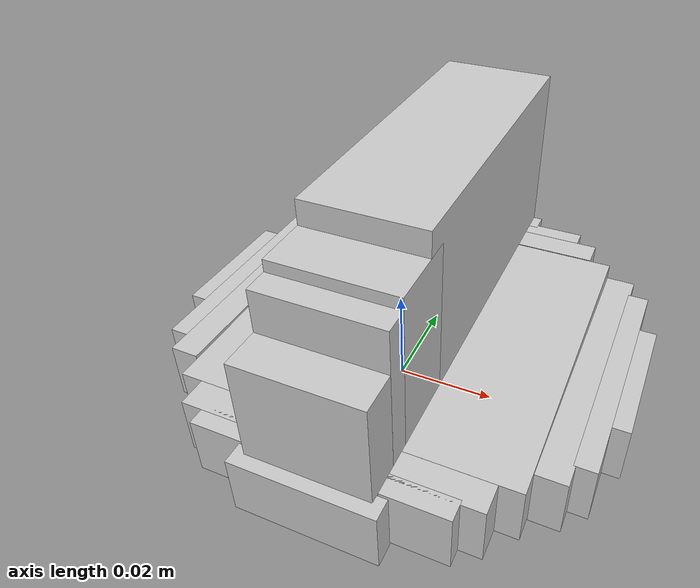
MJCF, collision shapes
<mujoco model="stove_knob_button">
  <asset>
  <texture file="button_dark_texture.png" name="tex-stove_knob_button" type="2d" />
  <material name="stove_knob_button" reflectance="0.5" texrepeat="1 1" texture="tex-stove_knob_button" texuniform="false" />
  <mesh file="visual/stove_knob_button_vis.msh" name="stove_knob_button_vis" scale="1.0 1.0 1.0" /></asset>
  <worldbody>
    <body>
      <body name="object">
      <geom solimp="0.998 0.998 0.001" solref="0.001 1" density="100" friction="0.95 0.3 0.1" type="mesh" mesh="stove_knob_button_vis" conaffinity="0" contype="0" group="1" material="stove_knob_button" /><geom solimp="0.998 0.998 0.001" solref="0.001 1" density="100" friction="0.95 0.3 0.1" type="box" pos="0.00132 0.00458 0.00657" quat="0.00206 -0.70710 0.00206 0.70710" size="0.00621 0.03396 0.03396" group="0" rgba="0.8 0.8 0.8 0.3" /><geom solimp="0.998 0.998 0.001" solref="0.001 1" density="100" friction="0.95 0.3 0.1" type="box" pos="0.00111 -0.03234 0.00657" quat="0.49854 0.49854 -0.50145 -0.50145" size="0.00296 0.00621 0.02939" group="0" rgba="0.8 0.8 0.8 0.3" /><geom solimp="0.998 0.998 0.001" solref="0.001 1" density="100" friction="0.95 0.3 0.1" type="box" pos="0.00111 -0.03234 0.00657" quat="0.49854 0.49854 -0.50145 -0.50145" size="0.00296 0.00621 0.02939" group="0" rgba="0.8 0.8 0.8 0.3" /><geom solimp="0.998 0.998 0.001" solref="0.001 1" density="100" friction="0.95 0.3 0.1" type="box" pos="0.00108 -0.03650 0.00657" quat="0.49855 -0.49855 0.50145 -0.50145" size="0.00211 0.00621 0.02497" group="0" rgba="0.8 0.8 0.8 0.3" /><geom solimp="0.998 0.998 0.001" solref="0.001 1" density="100" friction="0.95 0.3 0.1" type="box" pos="0.00105 -0.04112 0.00657" quat="0.49854 0.49854 -0.50145 -0.50145" size="0.00211 0.00621 0.01416" group="0" rgba="0.8 0.8 0.8 0.3" /><geom solimp="0.998 0.998 0.001" solref="0.001 1" density="100" friction="0.95 0.3 0.1" type="box" pos="0.00158 0.04983 0.00657" quat="0.49855 0.49855 -0.50145 -0.50145" size="0.00211 0.00621 0.01416" group="0" rgba="0.8 0.8 0.8 0.3" /><geom solimp="0.998 0.998 0.001" solref="0.001 1" density="100" friction="0.95 0.3 0.1" type="box" pos="0.00156 0.04640 0.00657" quat="0.50145 0.50145 0.49855 0.49855" size="0.00211 0.00621 0.02497" group="0" rgba="0.8 0.8 0.8 0.3" /><geom solimp="0.998 0.998 0.001" solref="0.001 1" density="100" friction="0.95 0.3 0.1" type="box" pos="0.00154 0.04175 0.00657" quat="0.50145 0.50145 0.49854 0.49854" size="0.00296 0.00621 0.02939" group="0" rgba="0.8 0.8 0.8 0.3" /><geom solimp="0.998 0.998 0.001" solref="0.001 1" density="100" friction="0.95 0.3 0.1" type="box" pos="0.03850 0.00412 0.00657" quat="0.70709 0.70709 -0.00429 -0.00429" size="0.00296 0.00621 0.02939" group="0" rgba="0.8 0.8 0.8 0.3" /><geom solimp="0.998 0.998 0.001" solref="0.001 1" density="100" friction="0.95 0.3 0.1" type="box" pos="0.04314 0.00407 0.00657" quat="0.00429 0.00429 0.70709 0.70709" size="0.00211 0.00621 0.02497" group="0" rgba="0.8 0.8 0.8 0.3" /><geom solimp="0.998 0.998 0.001" solref="0.001 1" density="100" friction="0.95 0.3 0.1" type="box" pos="0.04657 0.00403 0.00657" quat="0.70709 0.70709 -0.00431 -0.00431" size="0.00211 0.00621 0.01416" group="0" rgba="0.8 0.8 0.8 0.3" /><geom solimp="0.998 0.998 0.001" solref="0.001 1" density="100" friction="0.95 0.3 0.1" type="box" pos="-0.04392 0.00544 0.00657" quat="0.70707 0.70707 -0.00674 -0.00674" size="0.00211 0.00621 0.01416" group="0" rgba="0.8 0.8 0.8 0.3" /><geom solimp="0.998 0.998 0.001" solref="0.001 1" density="100" friction="0.95 0.3 0.1" type="box" pos="-0.04049 0.00537 0.00657" quat="0.00673 0.00673 0.70707 0.70707" size="0.00211 0.00621 0.02497" group="0" rgba="0.8 0.8 0.8 0.3" /><geom solimp="0.998 0.998 0.001" solref="0.001 1" density="100" friction="0.95 0.3 0.1" type="box" pos="-0.03585 0.00528 0.00657" quat="0.70707 -0.70707 0.00674 -0.00674" size="0.00296 0.00621 0.02939" group="0" rgba="0.8 0.8 0.8 0.3" /><geom solimp="0.998 0.998 0.001" solref="0.001 1" density="100" friction="0.95 0.3 0.1" type="box" pos="0.00139 0.01737 0.02570" quat="0.00205 0.00205 0.70710 0.70710" size="0.01214 0.02432 0.03454" group="0" rgba="0.8 0.8 0.8 0.3" /><geom solimp="0.998 0.998 0.001" solref="0.001 1" density="100" friction="0.95 0.3 0.1" type="box" pos="0.00118 -0.02003 0.02439" quat="-0.00000 -0.70916 -0.70505 -0.00000" size="0.00776 0.01214 0.02048" group="0" rgba="0.8 0.8 0.8 0.3" /><geom solimp="0.998 0.998 0.001" solref="0.001 1" density="100" friction="0.95 0.3 0.1" type="box" pos="0.00115 -0.02496 0.02505" quat="0.00000 -0.70505 0.70916 0.00000" size="0.00776 0.01214 0.01739" group="0" rgba="0.8 0.8 0.8 0.3" /><geom solimp="0.998 0.998 0.001" solref="0.001 1" density="100" friction="0.95 0.3 0.1" type="box" pos="0.00108 -0.03643 0.01715" quat="0.00000 -0.70505 0.70916 0.00000" size="0.00415 0.01214 0.01661" group="0" rgba="0.8 0.8 0.8 0.3" /></body>
      <site rgba="0 0 0 0" size="0.005" pos="0 0 -0.0240" name="bottom_site" />
      <site rgba="0 0 0 0" size="0.005" pos="0 0 0.04" name="top_site" />
      <site rgba="0 0 0 0" size="0.005" pos="0.025 0.025 0" name="horizontal_radius_site" />
    </body>
  </worldbody>
</mujoco>
